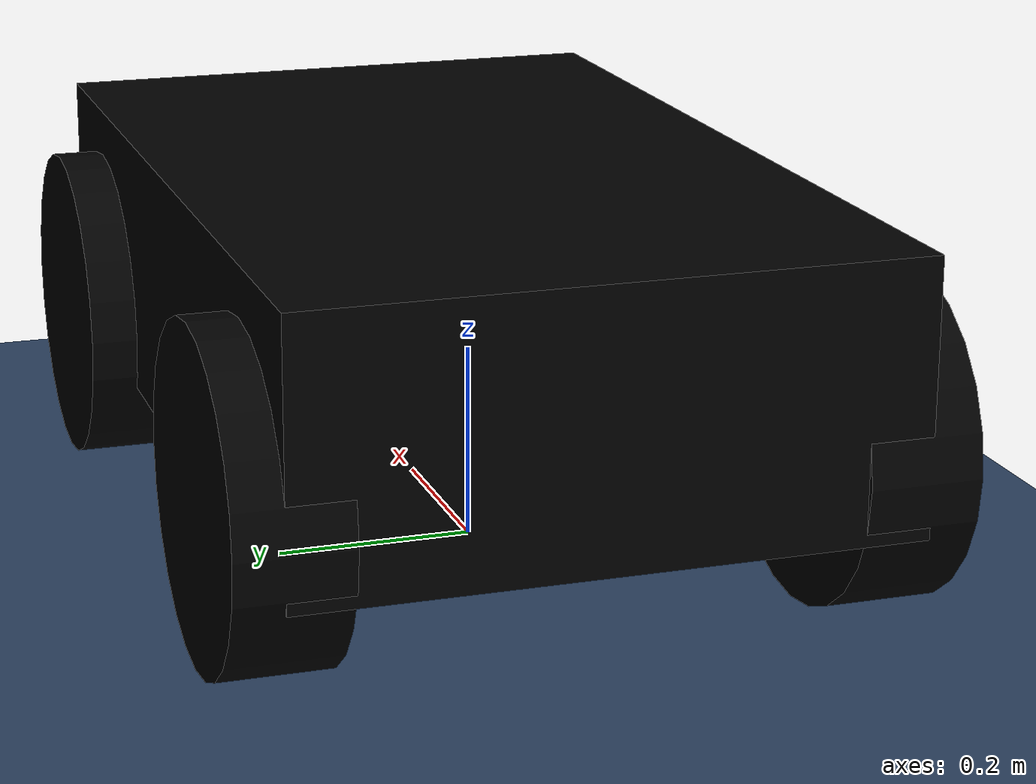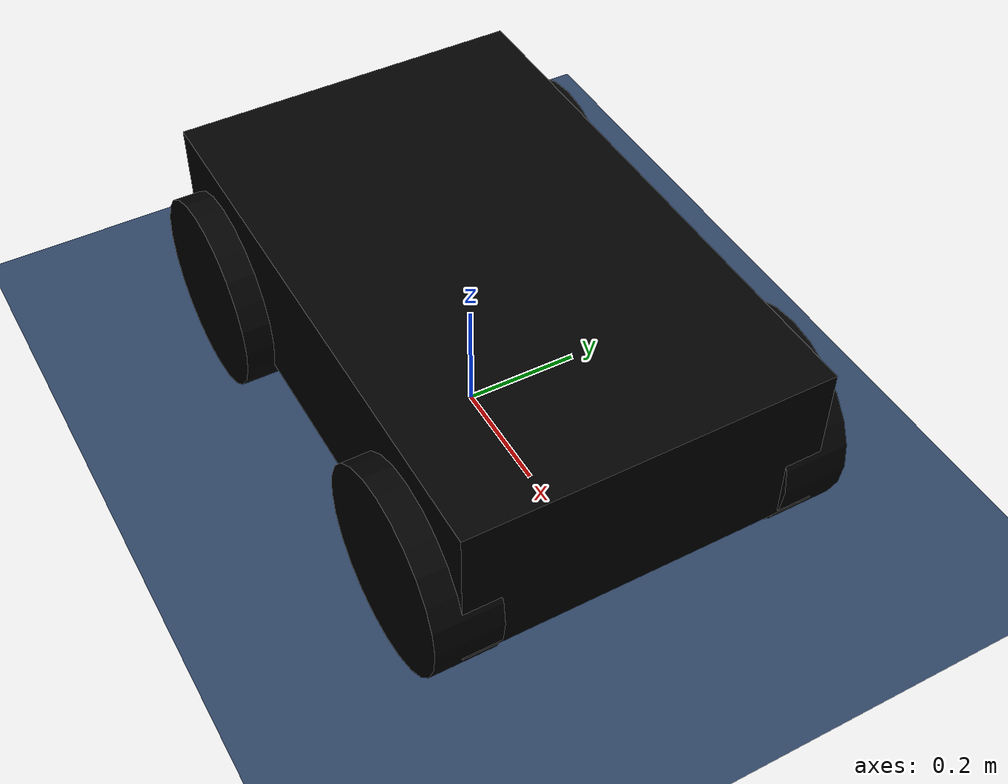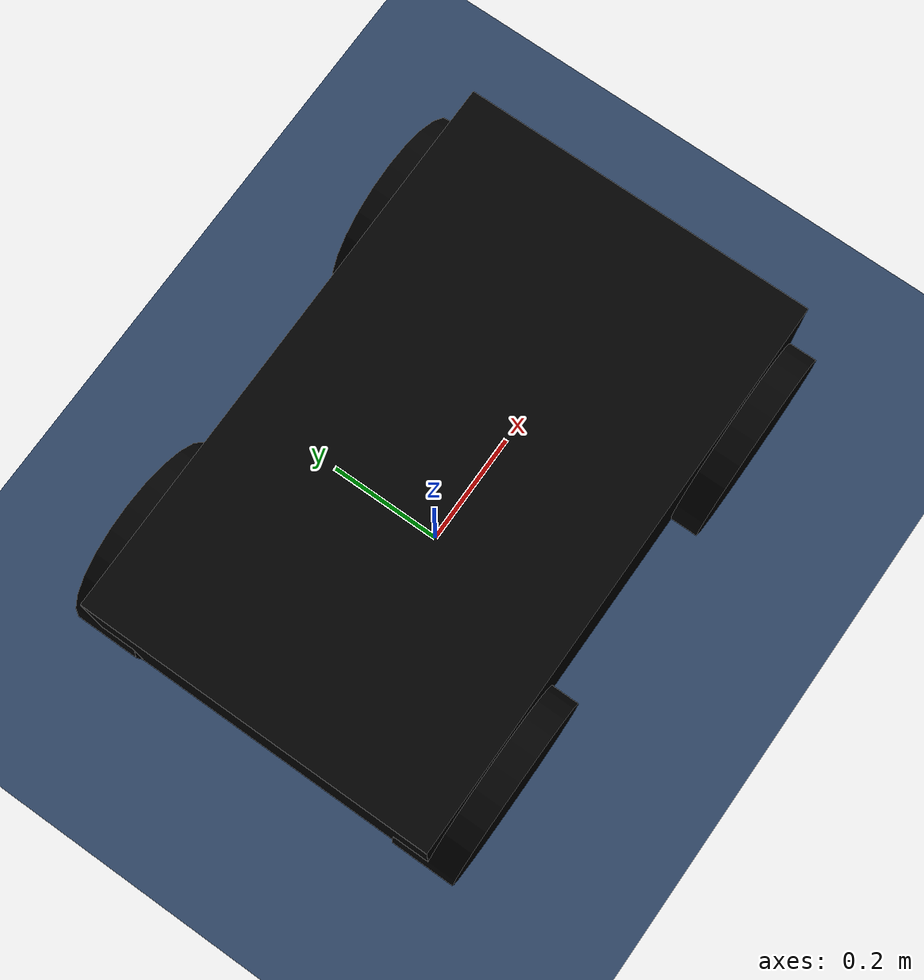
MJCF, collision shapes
<?xml version='1.0' encoding='utf-8'?>
<mujoco model="hunter_v2_world">
  <compiler angle="radian" />
  <option timestep="0.002" gravity="0 0 -9.81" integrator="implicitfast" cone="elliptic" />
  <asset>
    <texture name="ground_tex" type="2d" builtin="checker" rgb1="0.22 0.31 0.43" rgb2="0.12 0.20 0.32" width="512" height="512" />
    <material name="ground_mat" texture="ground_tex" texrepeat="12 12" reflectance="0.05" />
    <mesh name="chassis" content_type="model/obj" file="../source/hunter_description/meshes/chassis.obj" />
    <mesh name="rear_left_wheel" content_type="model/obj" file="../source/hunter_description/meshes/rear_left_wheel.obj" />
    <mesh name="rear_right_wheel" content_type="model/obj" file="../source/hunter_description/meshes/rear_right_wheel.obj" />
    <mesh name="front_left_wheel" content_type="model/obj" file="../source/hunter_description/meshes/front_left_wheel.obj" />
    <mesh name="front_right_wheel" content_type="model/obj" file="../source/hunter_description/meshes/front_right_wheel.obj" />
    <material name="hunter_body" rgba="0.34 0.36 0.38 1" specular="0.35" shininess="0.45" />
    <material name="hunter_tire" rgba="0.025 0.028 0.032 1" specular="0.08" shininess="0.15" />
  </asset>
  <worldbody>
    <geom name="ground" type="plane" size="30 30 0.1" material="ground_mat" condim="4" friction="1.1 0.01 0.001" />
    <light name="key_light" pos="0 -4 6" dir="0 0.5 -1" diffuse="0.9 0.9 0.9" />
    <body name="base_link" pos="0 0 0">
      <freejoint name="base_freejoint" />
      <body name="chassis" pos="0 0 0.37">
        <inertial pos="0.0266989 0.000409204 -0.135901" quat="-1.58963e-05 0.699923 -6.37864e-06 0.714218" mass="72" diaginertia="0.126647 0.111072 0.0331989" />
        <geom type="mesh" contype="0" conaffinity="0" group="1" density="0" mesh="chassis" material="hunter_body" />
        <geom type="mesh" mesh="chassis" material="hunter_body" contype="0" conaffinity="0" />
        <body name="rear_left_wheel" pos="-0.28 0.2925 -0.19558" quat="0.707107 0.707107 0 0">
          <inertial pos="-6.5774e-06 2.0242e-05 -0.0096386" quat="0.5 0.5 -0.5 0.5" mass="7" diaginertia="0.11072 0.063724 0.063724" />
          <joint name="rear_left_wheel_joint" actuatorfrcrange="-300 300" damping="0.2" frictionloss="1.0" axis="0 0 -1" />
          <geom type="mesh" contype="0" conaffinity="0" group="1" density="0" mesh="rear_left_wheel" material="hunter_tire" />
          <geom type="mesh" mesh="rear_left_wheel" material="hunter_tire" contype="0" conaffinity="0" />
          <geom name="rear_left_tire" type="cylinder" size="0.164 0.055" density="0" rgba="0 0 0 0" condim="3" friction="1.4 0.02 0.002" />
        </body>
        <body name="rear_right_wheel" pos="-0.28 -0.2925 -0.19558" quat="0.707107 0.707107 0 0">
          <inertial pos="-6.5774e-06 2.0242e-05 -0.0096386" quat="0.5 0.5 -0.5 0.5" mass="7" diaginertia="0.11072 0.063724 0.063724" />
          <joint name="rear_right_wheel_joint" actuatorfrcrange="-300 300" damping="0.2" frictionloss="1.0" axis="0 0 -1" />
          <geom type="mesh" contype="0" conaffinity="0" group="1" density="0" mesh="rear_right_wheel" material="hunter_tire" />
          <geom type="mesh" mesh="rear_right_wheel" material="hunter_tire" contype="0" conaffinity="0" />
          <geom name="rear_right_tire" type="cylinder" size="0.164 0.055" density="0" rgba="0 0 0 0" condim="3" friction="1.4 0.02 0.002" />
        </body>
        <body name="front_left_steering_link" pos="0.37142 0.2925 -0.19558" quat="0.707107 0.707107 0 0">
          <inertial pos="0 0 0" mass="0.005" diaginertia="0.1 0.1 0.1" />
          <joint name="front_left_steering_joint" range="-0.461 0.461" actuatorfrcrange="-100 100" damping="0.2" axis="0 1 0" />
          <geom size="0.01 0.005" type="cylinder" contype="0" conaffinity="0" group="1" rgba="0 0 0 0" density="0" />
          <body name="front_left_wheel">
            <inertial pos="-6.5774e-06 2.0242e-05 -0.0096386" quat="0.5 0.5 -0.5 0.5" mass="7" diaginertia="0.11072 0.063724 0.063724" />
            <joint name="front_left_wheel_joint" axis="0 0 -1" />
            <geom type="mesh" contype="0" conaffinity="0" group="1" density="0" mesh="front_left_wheel" material="hunter_tire" />
            <geom type="mesh" mesh="front_left_wheel" material="hunter_tire" contype="0" conaffinity="0" />
            <geom name="front_left_tire" type="cylinder" size="0.164 0.055" density="0" rgba="0 0 0 0" condim="3" friction="1.4 0.02 0.002" />
          </body>
        </body>
        <body name="front_right_steering_link" pos="0.37142 -0.2925 -0.19558" quat="0.707107 0.707107 0 0">
          <inertial pos="0 0 0" mass="0.005" diaginertia="0.1 0.1 0.1" />
          <joint name="front_right_steering_joint" range="-0.461 0.461" actuatorfrcrange="-100 100" damping="0.2" axis="0 1 0" />
          <geom size="0.01 0.005" type="cylinder" contype="0" conaffinity="0" group="1" rgba="0 0 0 0" density="0" />
          <body name="front_right_wheel">
            <inertial pos="-6.5774e-06 2.0242e-05 -0.0096386" quat="0.5 0.5 -0.5 0.5" mass="7" diaginertia="0.11072 0.063724 0.063724" />
            <joint name="front_right_wheel_joint" axis="0 0 -1" />
            <geom type="mesh" contype="0" conaffinity="0" group="1" density="0" mesh="front_right_wheel" material="hunter_tire" />
            <geom type="mesh" mesh="front_right_wheel" material="hunter_tire" contype="0" conaffinity="0" />
            <geom name="front_right_tire" type="cylinder" size="0.164 0.055" density="0" rgba="0 0 0 0" condim="3" friction="1.4 0.02 0.002" />
          </body>
        </body>
        <geom name="chassis_collision" type="box" pos="0.044 0 -0.117" size="0.482 0.300 0.134" density="0" rgba="0 0 0 0" condim="4" friction="1.1 0.01 0.001" />
      </body>
    </body>
  </worldbody>
  <actuator>
    <position name="front_left_steer_motor" joint="front_left_steering_joint" ctrllimited="true" ctrlrange="-0.461 0.461" kp="500" kv="30" />
    <position name="front_right_steer_motor" joint="front_right_steering_joint" ctrllimited="true" ctrlrange="-0.461 0.461" kp="500" kv="30" />
    <velocity name="rear_left_wheel_motor" joint="rear_left_wheel_joint" ctrllimited="true" ctrlrange="-10 10" kv="120" />
    <velocity name="rear_right_wheel_motor" joint="rear_right_wheel_joint" ctrllimited="true" ctrlrange="-10 10" kv="120" />
  </actuator>
  <contact>
    <exclude body1="chassis" body2="front_left_wheel" />
    <exclude body1="chassis" body2="front_right_wheel" />
  </contact>
</mujoco>
